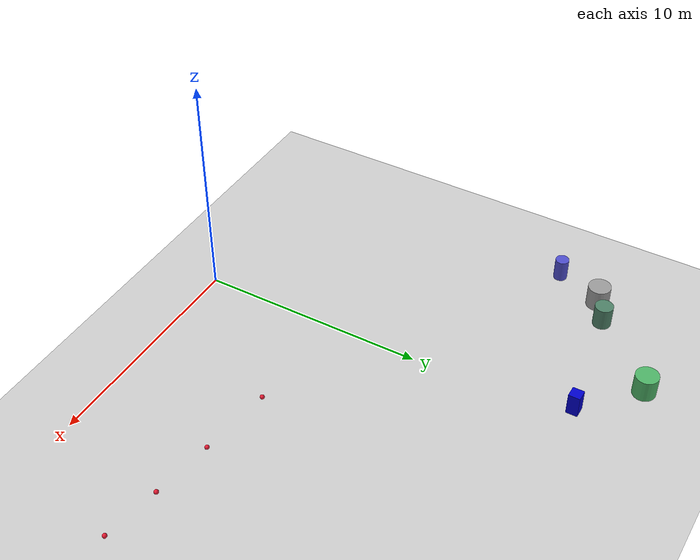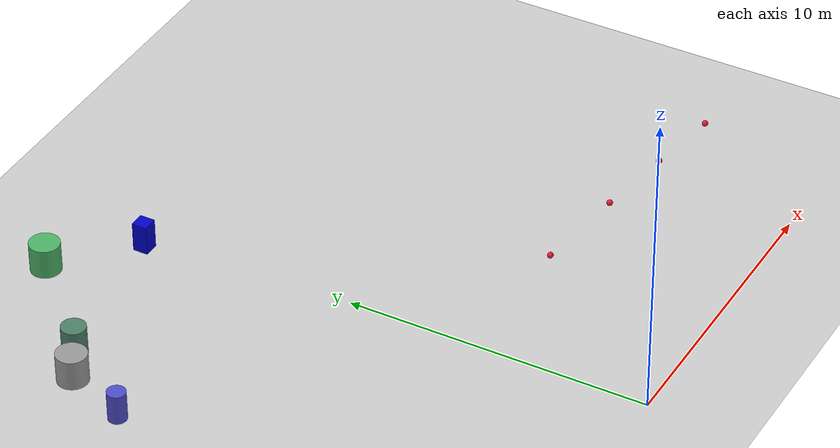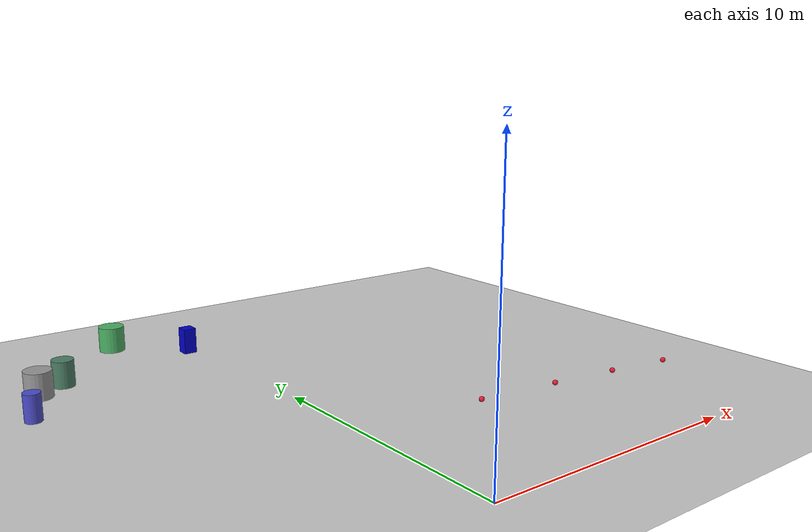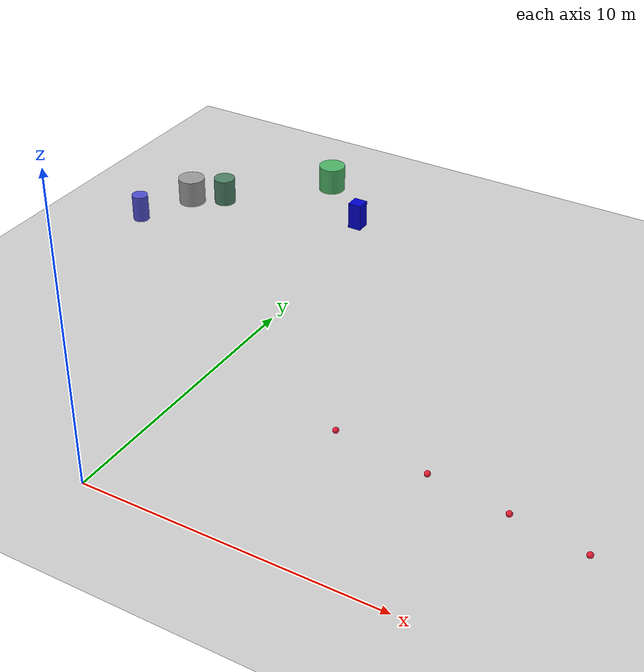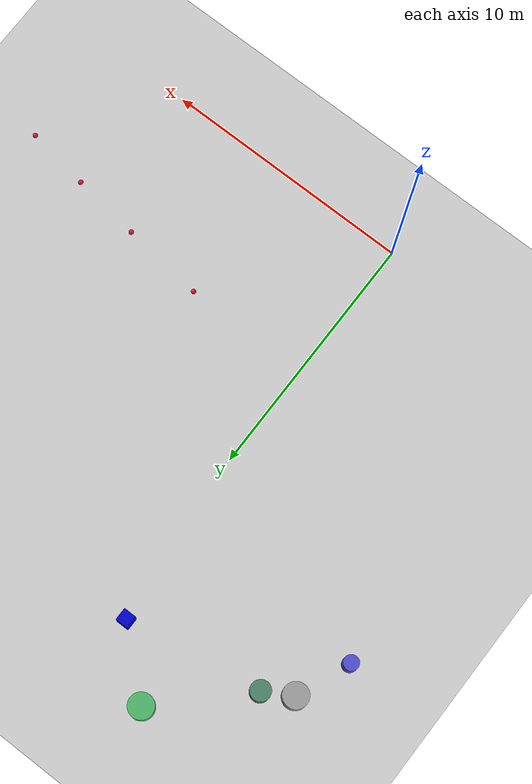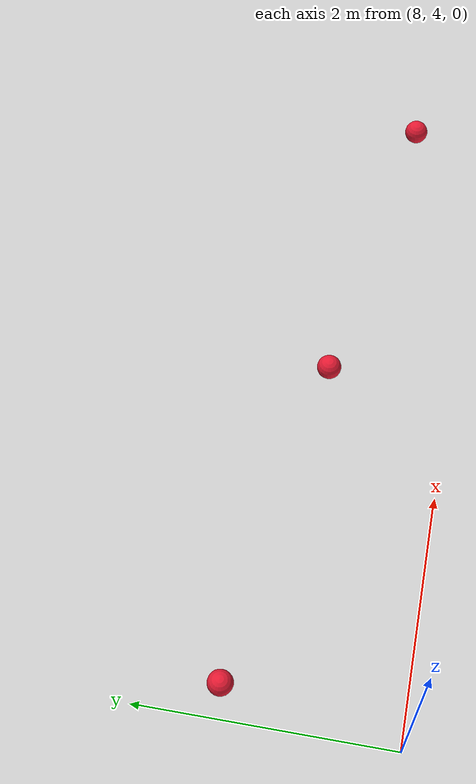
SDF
<sdf version="1.7">
 <world name="default">
  <scene><ambient>0.4 0.4 0.4 1</ambient><background>0.7 0.7 0.7 1</background><shadows>1</shadows></scene>
  <light name="sun" type="directional">
   <pose>0 0 10 0 -0 0</pose>
   <diffuse>0.8 0.8 0.8 1</diffuse>
   <specular>0.2 0.2 0.2 1</specular>
   <attenuation>
    <range>1000</range>
    <constant>0.9</constant>
    <linear>0.01</linear>
    <quadratic>0.001</quadratic>
   </attenuation>
   <direction>-0.5 0.1 -0.9</direction>
   <spot><inner_angle>0</inner_angle><outer_angle>0</outer_angle><falloff>0</falloff></spot>
  </light>
  <model name="ground_plane">
   <static>1</static>
   <link name="link">
    <collision name="collision">
     <geometry><plane><normal>0 0 1</normal><size>100 100</size></plane></geometry>
     <surface><friction><ode><mu>100</mu><mu2>50</mu2></ode></friction></surface>
    </collision>
    <visual name="visual">
     <cast_shadows>0</cast_shadows>
     <geometry><plane><normal>0 0 1</normal><size>100 100</size></plane></geometry>
     <material>
      <script><uri>file://media/materials/scripts/gazebo.material</uri><name>Gazebo/Grey</name></script>
     </material>
    </visual>
   </link>
  </model>
  <physics name="default_physics" default="0" type="ode">
   <real_time_update_rate>-1</real_time_update_rate>
   <max_step_size>0.01</max_step_size>
   <real_time_factor>10</real_time_factor>
   <ode>
    <solver>
     <type>quick</type>
     <iters>150</iters>
     <precon_iters>0</precon_iters>
     <sor>1.4</sor>
     <use_dynamic_moi_rescaling>1</use_dynamic_moi_rescaling>
    </solver>
    <constraints>
     <cfm>1e-05</cfm>
     <erp>0.2</erp>
     <contact_max_correcting_vel>2000</contact_max_correcting_vel>
     <contact_surface_layer>0.01</contact_surface_layer>
    </constraints>
   </ode>
  </physics>
  <gravity>0 0 -9.8</gravity>
  <magnetic_field>6e-06 2.3e-05 -4.2e-05</magnetic_field>
  <atmosphere type="adiabatic"/>
  <spherical_coordinates>
   <surface_model>EARTH_WGS84</surface_model>
   <latitude_deg>0</latitude_deg>
   <longitude_deg>0</longitude_deg>
   <elevation>0</elevation>
   <heading_deg>0</heading_deg>
  </spherical_coordinates>
  <audio><device>default</device></audio>
  <model name="unit_cylinder">
   <pose>-7.08672 15.3696 0.49912 0 -0 0</pose>
   <link name="link">
    <inertial>
     <mass>1</mass>
     <inertia><ixx>0.145833</ixx><ixy>0</ixy><ixz>0</ixz><iyy>0.145833</iyy><iyz>0</iyz><izz>0.125</izz></inertia>
    </inertial>
    <collision name="collision">
     <geometry><cylinder><radius>0.5</radius><length>1</length></cylinder></geometry>
    </collision>
    <visual name="visual">
     <geometry><cylinder><radius>0.5</radius><length>1</length></cylinder></geometry>
     <material>
      <script><name>Gazebo/Grey</name><uri>file://media/materials/scripts/gazebo.material</uri></script>
     </material>
    </visual>
   </link>
  </model>
  <model name="target_1">
   <link name="link">
    <inertial>
     <mass>1</mass>
     <inertia><ixx>0.1</ixx><ixy>0</ixy><ixz>0</ixz><iyy>0.1</iyy><iyz>0</iyz><izz>0.1</izz></inertia>
    </inertial>
    <visual name="visual">
     <geometry><sphere><radius>0.1</radius></sphere></geometry>
     <material>
      <script><name>Gazebo/Grey</name><uri>file://media/materials/scripts/gazebo.material</uri></script>
      <shader type="pixel"><normal_map>__default__</normal_map></shader>
      <ambient>0.3 0.3 0.3 1</ambient>
      <diffuse>0.9 0.1 0.2 1</diffuse>
      <specular>0.01 0.01 0.01 1</specular>
      <emissive>0 0 0 1</emissive>
     </material>
    </visual>
    <collision name="collision">
     <geometry><sphere><radius>0.1</radius></sphere></geometry>
     <surface>
      <friction>
       <ode><mu>1</mu><mu2>1</mu2><fdir1>0 0 0</fdir1><slip1>0</slip1><slip2>0</slip2></ode>
       <torsional>
        <coefficient>1</coefficient>
        <patch_radius>0</patch_radius>
        <surface_radius>0</surface_radius>
        <use_patch_radius>1</use_patch_radius>
        <ode><slip>0</slip></ode>
       </torsional>
      </friction>
      <bounce><restitution_coefficient>0</restitution_coefficient><threshold>1e+06</threshold></bounce>
      <contact>
       <collide_without_contact>0</collide_without_contact>
       <collide_without_contact_bitmask>1</collide_without_contact_bitmask>
       <collide_bitmask>1</collide_bitmask>
       <ode>
        <soft_cfm>0</soft_cfm>
        <soft_erp>0.2</soft_erp>
        <kp>1e+13</kp>
        <kd>1</kd>
        <max_vel>0.01</max_vel>
        <min_depth>0</min_depth>
       </ode>
       <bullet>
        <split_impulse>1</split_impulse>
        <split_impulse_penetration_threshold>-0.01</split_impulse_penetration_threshold>
        <soft_cfm>0</soft_cfm>
        <soft_erp>0.2</soft_erp>
        <kp>1e+13</kp>
        <kd>1</kd>
       </bullet>
      </contact>
     </surface>
    </collision>
   </link>
   <static>1</static>
   <pose>8.25912 5.374 0.05 0 -0 0</pose>
  </model>
  <model name="target_0">
   <link name="link">
    <inertial>
     <mass>1</mass>
     <inertia><ixx>0.1</ixx><ixy>0</ixy><ixz>0</ixz><iyy>0.1</iyy><iyz>0</iyz><izz>0.1</izz></inertia>
    </inertial>
    <visual name="visual">
     <geometry><sphere><radius>0.1</radius></sphere></geometry>
     <material>
      <script><name>Gazebo/Grey</name><uri>file://media/materials/scripts/gazebo.material</uri></script>
      <shader type="pixel"><normal_map>__default__</normal_map></shader>
      <ambient>0.3 0.3 0.3 1</ambient>
      <diffuse>0.9 0.1 0.2 1</diffuse>
      <specular>0.01 0.01 0.01 1</specular>
      <emissive>0 0 0 1</emissive>
     </material>
    </visual>
    <collision name="collision">
     <geometry><sphere><radius>0.1</radius></sphere></geometry>
     <surface>
      <friction>
       <ode><mu>1</mu><mu2>1</mu2><fdir1>0 0 0</fdir1><slip1>0</slip1><slip2>0</slip2></ode>
       <torsional>
        <coefficient>1</coefficient>
        <patch_radius>0</patch_radius>
        <surface_radius>0</surface_radius>
        <use_patch_radius>1</use_patch_radius>
        <ode><slip>0</slip></ode>
       </torsional>
      </friction>
      <bounce><restitution_coefficient>0</restitution_coefficient><threshold>1e+06</threshold></bounce>
      <contact>
       <collide_without_contact>0</collide_without_contact>
       <collide_without_contact_bitmask>1</collide_without_contact_bitmask>
       <collide_bitmask>1</collide_bitmask>
       <ode>
        <soft_cfm>0</soft_cfm>
        <soft_erp>0.2</soft_erp>
        <kp>1e+13</kp>
        <kd>1</kd>
        <max_vel>0.01</max_vel>
        <min_depth>0</min_depth>
       </ode>
       <bullet>
        <split_impulse>1</split_impulse>
        <split_impulse_penetration_threshold>-0.01</split_impulse_penetration_threshold>
        <soft_cfm>0</soft_cfm>
        <soft_erp>0.2</soft_erp>
        <kp>1e+13</kp>
        <kd>1</kd>
       </bullet>
      </contact>
     </surface>
    </collision>
   </link>
   <static>1</static>
   <pose>4.97499 5.76495 0.05 0 -0 0</pose>
  </model>
  <model name="target_2">
   <link name="link">
    <inertial>
     <mass>1</mass>
     <inertia><ixx>0.1</ixx><ixy>0</ixy><ixz>0</ixz><iyy>0.1</iyy><iyz>0</iyz><izz>0.1</izz></inertia>
    </inertial>
    <visual name="visual">
     <geometry><sphere><radius>0.1</radius></sphere></geometry>
     <material>
      <script><name>Gazebo/Grey</name><uri>file://media/materials/scripts/gazebo.material</uri></script>
      <shader type="pixel"><normal_map>__default__</normal_map></shader>
      <ambient>0.3 0.3 0.3 1</ambient>
      <diffuse>0.9 0.1 0.2 1</diffuse>
      <specular>0.01 0.01 0.01 1</specular>
      <emissive>0 0 0 1</emissive>
     </material>
    </visual>
    <collision name="collision">
     <geometry><sphere><radius>0.1</radius></sphere></geometry>
     <surface>
      <friction>
       <ode><mu>1</mu><mu2>1</mu2><fdir1>0 0 0</fdir1><slip1>0</slip1><slip2>0</slip2></ode>
       <torsional>
        <coefficient>1</coefficient>
        <patch_radius>0</patch_radius>
        <surface_radius>0</surface_radius>
        <use_patch_radius>1</use_patch_radius>
        <ode><slip>0</slip></ode>
       </torsional>
      </friction>
      <bounce><restitution_coefficient>0</restitution_coefficient><threshold>1e+06</threshold></bounce>
      <contact>
       <collide_without_contact>0</collide_without_contact>
       <collide_without_contact_bitmask>1</collide_without_contact_bitmask>
       <collide_bitmask>1</collide_bitmask>
       <ode>
        <soft_cfm>0</soft_cfm>
        <soft_erp>0.2</soft_erp>
        <kp>1e+13</kp>
        <kd>1</kd>
        <max_vel>0.01</max_vel>
        <min_depth>0</min_depth>
       </ode>
       <bullet>
        <split_impulse>1</split_impulse>
        <split_impulse_penetration_threshold>-0.01</split_impulse_penetration_threshold>
        <soft_cfm>0</soft_cfm>
        <soft_erp>0.2</soft_erp>
        <kp>1e+13</kp>
        <kd>1</kd>
       </bullet>
      </contact>
     </surface>
    </collision>
   </link>
   <static>1</static>
   <pose>11 5 0.05 0 -0 0</pose>
  </model>
  <model name="target_3">
   <link name="link">
    <inertial>
     <mass>1</mass>
     <inertia><ixx>0.1</ixx><ixy>0</ixy><ixz>0</ixz><iyy>0.1</iyy><iyz>0</iyz><izz>0.1</izz></inertia>
    </inertial>
    <visual name="visual">
     <geometry><sphere><radius>0.1</radius></sphere></geometry>
     <material>
      <script><name>Gazebo/Grey</name><uri>file://media/materials/scripts/gazebo.material</uri></script>
      <shader type="pixel"><normal_map>__default__</normal_map></shader>
      <ambient>0.3 0.3 0.3 1</ambient>
      <diffuse>0.9 0.1 0.2 1</diffuse>
      <specular>0.01 0.01 0.01 1</specular>
      <emissive>0 0 0 1</emissive>
     </material>
    </visual>
    <collision name="collision">
     <geometry><sphere><radius>0.1</radius></sphere></geometry>
     <surface>
      <friction>
       <ode><mu>1</mu><mu2>1</mu2><fdir1>0 0 0</fdir1><slip1>0</slip1><slip2>0</slip2></ode>
       <torsional>
        <coefficient>1</coefficient>
        <patch_radius>0</patch_radius>
        <surface_radius>0</surface_radius>
        <use_patch_radius>1</use_patch_radius>
        <ode><slip>0</slip></ode>
       </torsional>
      </friction>
      <bounce><restitution_coefficient>0</restitution_coefficient><threshold>1e+06</threshold></bounce>
      <contact>
       <collide_without_contact>0</collide_without_contact>
       <collide_without_contact_bitmask>1</collide_without_contact_bitmask>
       <collide_bitmask>1</collide_bitmask>
       <ode>
        <soft_cfm>0</soft_cfm>
        <soft_erp>0.2</soft_erp>
        <kp>1e+13</kp>
        <kd>1</kd>
        <max_vel>0.01</max_vel>
        <min_depth>0</min_depth>
       </ode>
       <bullet>
        <split_impulse>1</split_impulse>
        <split_impulse_penetration_threshold>-0.01</split_impulse_penetration_threshold>
        <soft_cfm>0</soft_cfm>
        <soft_erp>0.2</soft_erp>
        <kp>1e+13</kp>
        <kd>1</kd>
       </bullet>
      </contact>
     </surface>
    </collision>
   </link>
   <static>1</static>
   <pose>13.543 4.60004 0.05 0 -0 0</pose>
  </model>
  <model name="obs_1">
   <link name="link">
    <inertial>
     <mass>1</mass>
     <inertia><ixx>0.145833</ixx><ixy>0</ixy><ixz>0</ixz><iyy>0.145833</iyy><iyz>0</iyz><izz>0.125</izz></inertia>
    </inertial>
    <visual name="visual">
     <geometry><cylinder><radius>0.4</radius><length>1</length></cylinder></geometry>
     <material>
      <script><name>Gazebo/Grey</name><uri>file://media/materials/scripts/gazebo.material</uri></script>
      <shader type="pixel"><normal_map>__default__</normal_map></shader>
      <ambient>0.3 0.5 0.4 1</ambient>
      <diffuse>0.7 0.7 0.7 1</diffuse>
      <specular>0.01 0.01 0.01 1</specular>
      <emissive>0 0 0 1</emissive>
     </material>
    </visual>
    <collision name="collision">
     <geometry><cylinder><radius>0.4</radius><length>1</length></cylinder></geometry>
     <surface>
      <friction>
       <ode><mu>1</mu><mu2>1</mu2><fdir1>0 0 0</fdir1><slip1>0</slip1><slip2>0</slip2></ode>
       <torsional>
        <coefficient>1</coefficient>
        <patch_radius>0</patch_radius>
        <surface_radius>0</surface_radius>
        <use_patch_radius>1</use_patch_radius>
        <ode><slip>0</slip></ode>
       </torsional>
      </friction>
      <bounce><restitution_coefficient>0</restitution_coefficient><threshold>1e+06</threshold></bounce>
      <contact>
       <collide_without_contact>0</collide_without_contact>
       <collide_without_contact_bitmask>1</collide_without_contact_bitmask>
       <collide_bitmask>1</collide_bitmask>
       <ode>
        <soft_cfm>0</soft_cfm>
        <soft_erp>0.2</soft_erp>
        <kp>1e+13</kp>
        <kd>1</kd>
        <max_vel>0.01</max_vel>
        <min_depth>0</min_depth>
       </ode>
       <bullet>
        <split_impulse>1</split_impulse>
        <split_impulse_penetration_threshold>-0.01</split_impulse_penetration_threshold>
        <soft_cfm>0</soft_cfm>
        <soft_erp>0.2</soft_erp>
        <kp>1e+13</kp>
        <kd>1</kd>
       </bullet>
      </contact>
     </surface>
    </collision>
   </link>
   <static>1</static>
   <pose>-6 16 0.5 0 -0 0</pose>
  </model>
  <model name="obs_2">
   <link name="link">
    <inertial>
     <mass>1</mass>
     <inertia><ixx>0.145833</ixx><ixy>0</ixy><ixz>0</ixz><iyy>0.145833</iyy><iyz>0</iyz><izz>0.125</izz></inertia>
    </inertial>
    <visual name="visual">
     <geometry><cylinder><radius>0.5</radius><length>1</length></cylinder></geometry>
     <material>
      <script><name>Gazebo/Grey</name><uri>file://media/materials/scripts/gazebo.material</uri></script>
      <shader type="pixel"><normal_map>__default__</normal_map></shader>
      <ambient>0.3 0.7 0.4 1</ambient>
      <diffuse>0.7 0.7 0.7 1</diffuse>
      <specular>0.01 0.01 0.01 1</specular>
      <emissive>0 0 0 1</emissive>
     </material>
    </visual>
    <collision name="collision">
     <geometry><cylinder><radius>0.5</radius><length>1</length></cylinder></geometry>
     <surface>
      <friction>
       <ode><mu>1</mu><mu2>1</mu2><fdir1>0 0 0</fdir1><slip1>0</slip1><slip2>0</slip2></ode>
       <torsional>
        <coefficient>1</coefficient>
        <patch_radius>0</patch_radius>
        <surface_radius>0</surface_radius>
        <use_patch_radius>1</use_patch_radius>
        <ode><slip>0</slip></ode>
       </torsional>
      </friction>
      <bounce><restitution_coefficient>0</restitution_coefficient><threshold>1e+06</threshold></bounce>
      <contact>
       <collide_without_contact>0</collide_without_contact>
       <collide_without_contact_bitmask>1</collide_without_contact_bitmask>
       <collide_bitmask>1</collide_bitmask>
       <ode>
        <soft_cfm>0</soft_cfm>
        <soft_erp>0.2</soft_erp>
        <kp>1e+13</kp>
        <kd>1</kd>
        <max_vel>0.01</max_vel>
        <min_depth>0</min_depth>
       </ode>
       <bullet>
        <split_impulse>1</split_impulse>
        <split_impulse_penetration_threshold>-0.01</split_impulse_penetration_threshold>
        <soft_cfm>0</soft_cfm>
        <soft_erp>0.2</soft_erp>
        <kp>1e+13</kp>
        <kd>1</kd>
       </bullet>
      </contact>
     </surface>
    </collision>
   </link>
   <static>1</static>
   <pose>-3 19 0.5 0 -0 0</pose>
  </model>
  <model name="obs_3">
   <link name="link">
    <inertial>
     <mass>1</mass>
     <inertia>
      <ixx>0.166667</ixx>
      <ixy>0</ixy>
      <ixz>0</ixz>
      <iyy>0.166667</iyy>
      <iyz>0</iyz>
      <izz>0.166667</izz>
     </inertia>
    </inertial>
    <visual name="visual">
     <geometry><box><size>0.5 0.5 1</size></box></geometry>
     <material>
      <script><name>Gazebo/Grey</name><uri>file://media/materials/scripts/gazebo.material</uri></script>
      <shader type="pixel"><normal_map>__default__</normal_map></shader>
      <ambient>0 0 0.8 0</ambient>
      <diffuse>0.7 0.7 0.7 1</diffuse>
      <specular>0.01 0.01 0.01 1</specular>
      <emissive>0 0 0 1</emissive>
     </material>
    </visual>
    <collision name="collision">
     <geometry><box><size>0.5 0.5 1</size></box></geometry>
     <surface>
      <friction>
       <ode><mu>1</mu><mu2>1</mu2><fdir1>0 0 0</fdir1><slip1>0</slip1><slip2>0</slip2></ode>
       <torsional>
        <coefficient>1</coefficient>
        <patch_radius>0</patch_radius>
        <surface_radius>0</surface_radius>
        <use_patch_radius>1</use_patch_radius>
        <ode><slip>0</slip></ode>
       </torsional>
      </friction>
      <bounce><restitution_coefficient>0</restitution_coefficient><threshold>1e+06</threshold></bounce>
      <contact>
       <collide_without_contact>0</collide_without_contact>
       <collide_without_contact_bitmask>1</collide_without_contact_bitmask>
       <collide_bitmask>1</collide_bitmask>
       <ode>
        <soft_cfm>0</soft_cfm>
        <soft_erp>0.2</soft_erp>
        <kp>1e+13</kp>
        <kd>1</kd>
        <max_vel>0.01</max_vel>
        <min_depth>0</min_depth>
       </ode>
       <bullet>
        <split_impulse>1</split_impulse>
        <split_impulse_penetration_threshold>-0.01</split_impulse_penetration_threshold>
        <soft_cfm>0</soft_cfm>
        <soft_erp>0.2</soft_erp>
        <kp>1e+13</kp>
        <kd>1</kd>
       </bullet>
      </contact>
     </surface>
    </collision>
   </link>
   <static>1</static>
   <pose>-0.665763 16.915 0.5 0 -0 0</pose>
  </model>
  <model name="obs_0">
   <link name="link">
    <inertial>
     <mass>1</mass>
     <inertia><ixx>0.145833</ixx><ixy>0</ixy><ixz>0</ixz><iyy>0.145833</iyy><iyz>0</iyz><izz>0.125</izz></inertia>
    </inertial>
    <visual name="visual">
     <geometry><cylinder><radius>0.3</radius><length>1</length></cylinder></geometry>
     <material>
      <script><name>Gazebo/Grey</name><uri>file://media/materials/scripts/gazebo.material</uri></script>
      <shader type="pixel"><normal_map>__default__</normal_map></shader>
      <ambient>0.3 0.3 0.8 1</ambient>
      <diffuse>0.7 0.7 0.7 1</diffuse>
      <specular>0.01 0.01 0.01 1</specular>
      <emissive>0 0 0 1</emissive>
     </material>
    </visual>
    <collision name="collision">
     <geometry><cylinder><radius>0.3</radius><length>1</length></cylinder></geometry>
     <surface>
      <friction>
       <ode><mu>1</mu><mu2>1</mu2><fdir1>0 0 0</fdir1><slip1>0</slip1><slip2>0</slip2></ode>
       <torsional>
        <coefficient>1</coefficient>
        <patch_radius>0</patch_radius>
        <surface_radius>0</surface_radius>
        <use_patch_radius>1</use_patch_radius>
        <ode><slip>0</slip></ode>
       </torsional>
      </friction>
      <bounce><restitution_coefficient>0</restitution_coefficient><threshold>1e+06</threshold></bounce>
      <contact>
       <collide_without_contact>0</collide_without_contact>
       <collide_without_contact_bitmask>1</collide_without_contact_bitmask>
       <collide_bitmask>1</collide_bitmask>
       <ode>
        <soft_cfm>0</soft_cfm>
        <soft_erp>0.2</soft_erp>
        <kp>1e+13</kp>
        <kd>1</kd>
        <max_vel>0.01</max_vel>
        <min_depth>0</min_depth>
       </ode>
       <bullet>
        <split_impulse>1</split_impulse>
        <split_impulse_penetration_threshold>-0.01</split_impulse_penetration_threshold>
        <soft_cfm>0</soft_cfm>
        <soft_erp>0.2</soft_erp>
        <kp>1e+13</kp>
        <kd>1</kd>
       </bullet>
      </contact>
     </surface>
    </collision>
   </link>
   <static>1</static>
   <pose>-7.94337 13.2642 0.5 0 -0 0</pose>
  </model>
 </world>
</sdf>
